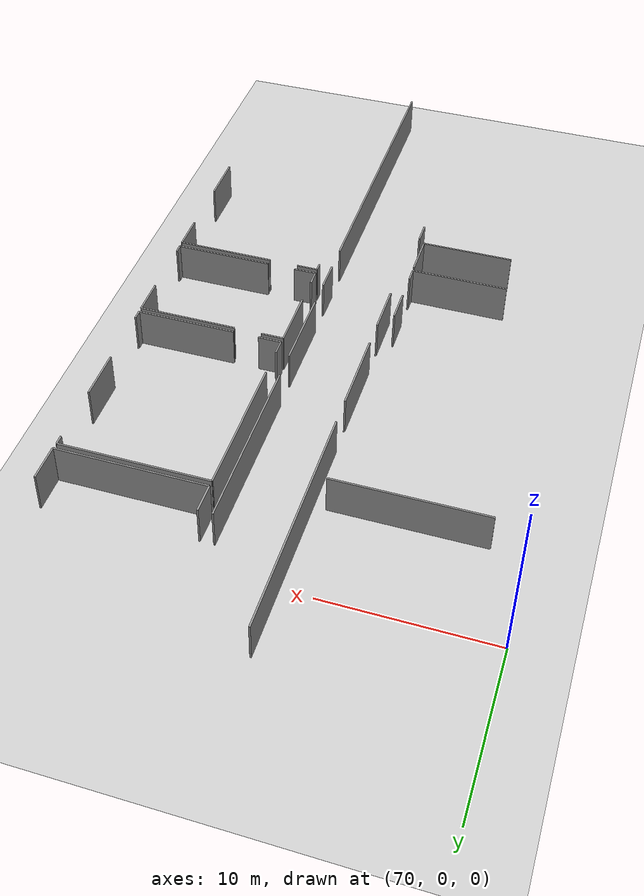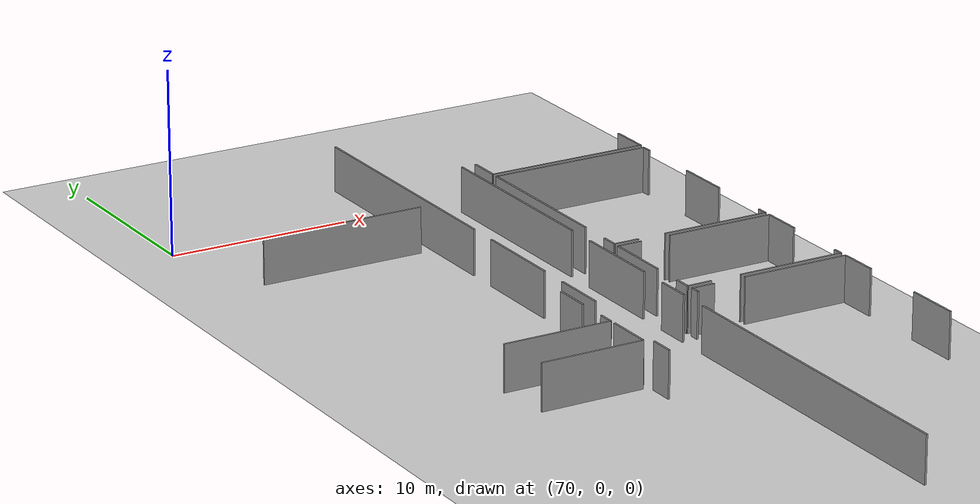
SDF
<sdf version="1.6">
 <world name="default">
  <model name="ground_plane">
   <static>1</static>
   <link name="link">
    <collision name="collision">
     <geometry><plane><normal>0 0 1</normal><size>100 100</size></plane></geometry>
     <surface><friction><ode><mu>100</mu><mu2>50</mu2></ode></friction></surface>
    </collision>
    <visual name="visual">
     <cast_shadows>0</cast_shadows>
     <geometry><plane><normal>0 0 1</normal><size>100 100</size></plane></geometry>
     <material>
      <script><uri>file://media/materials/scripts/gazebo.material</uri><name>Gazebo/Grey</name></script>
     </material>
    </visual>
   </link>
  </model>
  <model name="0510035740_A_40_1_103">
   <static>1</static>
   <link name="Wall_514">
    <collision name="Wall_514_Collision">
     <geometry><box><size>3.12075277755 0.1 2.5</size></box></geometry>
     <pose>1.56037638877 0 1.25 0 0 0</pose>
    </collision>
    <visual name="Wall_514_Visual">
     <pose>1.56037638877 0 1.25 0 0 0</pose>
     <geometry><box><size>3.12075277755 0.1 2.5</size></box></geometry>
     <material>
      <script><uri>file://media/materials/scripts/gazebo.material</uri><name>Gazebo/Grey</name></script>
      <ambient>1 1 1 1</ambient>
     </material>
    </visual>
    <pose>175.821272438 -71.553714079 0 0 0 1.57079632679</pose>
   </link>
   <link name="Wall_515">
    <collision name="Wall_515_Collision">
     <geometry><box><size>5.16741432587 0.1 2.5</size></box></geometry>
     <pose>2.58370716293 0 1.25 0 0 0</pose>
    </collision>
    <visual name="Wall_515_Visual">
     <pose>2.58370716293 0 1.25 0 0 0</pose>
     <geometry><box><size>5.16741432587 0.1 2.5</size></box></geometry>
     <material>
      <script><uri>file://media/materials/scripts/gazebo.material</uri><name>Gazebo/Grey</name></script>
      <ambient>1 1 1 1</ambient>
     </material>
    </visual>
    <pose>175.821272438 -66.7563434706 0 0 0 1.57079632679</pose>
   </link>
   <link name="Wall_516">
    <collision name="Wall_516_Collision">
     <geometry><box><size>14.5763722772 0.1 2.5</size></box></geometry>
     <pose>7.28818613859 0 1.25 0 0 0</pose>
    </collision>
    <visual name="Wall_516_Visual">
     <pose>7.28818613859 0 1.25 0 0 0</pose>
     <geometry><box><size>14.5763722772 0.1 2.5</size></box></geometry>
     <material>
      <script><uri>file://media/materials/scripts/gazebo.material</uri><name>Gazebo/Grey</name></script>
      <ambient>1 1 1 1</ambient>
     </material>
    </visual>
    <pose>175.821272438 -59.8633274747 0 0 0 1.57079632679</pose>
   </link>
   <link name="Wall_520">
    <collision name="Wall_520_Collision">
     <geometry><box><size>11.078976923 0.1 2.5</size></box></geometry>
     <pose>5.53948846151 0 1.25 0 0 0</pose>
    </collision>
    <visual name="Wall_520_Visual">
     <pose>5.53948846151 0 1.25 0 0 0</pose>
     <geometry><box><size>11.078976923 0.1 2.5</size></box></geometry>
     <material>
      <script><uri>file://media/materials/scripts/gazebo.material</uri><name>Gazebo/Grey</name></script>
      <ambient>1 1 1 1</ambient>
     </material>
    </visual>
    <pose>179.985660171 -51.4358229222 0 0 0 -1.57079632679</pose>
   </link>
   <link name="Wall_521">
    <collision name="Wall_521_Collision">
     <geometry><box><size>5.12680596182 0.1 2.5</size></box></geometry>
     <pose>2.56340298091 0 1.25 0 0 0</pose>
    </collision>
    <visual name="Wall_521_Visual">
     <pose>2.56340298091 0 1.25 0 0 0</pose>
     <geometry><box><size>5.12680596182 0.1 2.5</size></box></geometry>
     <material>
      <script><uri>file://media/materials/scripts/gazebo.material</uri><name>Gazebo/Grey</name></script>
      <ambient>1 1 1 1</ambient>
     </material>
    </visual>
    <pose>179.985660171 -64.2063920103 0 0 0 -1.57079632679</pose>
   </link>
   <link name="Wall_522">
    <collision name="Wall_522_Collision">
     <geometry><box><size>1.93016630394 0.1 2.5</size></box></geometry>
     <pose>0.96508315197 0 1.25 0 0 0</pose>
    </collision>
    <visual name="Wall_522_Visual">
     <pose>0.96508315197 0 1.25 0 0 0</pose>
     <geometry><box><size>1.93016630394 0.1 2.5</size></box></geometry>
     <material>
      <script><uri>file://media/materials/scripts/gazebo.material</uri><name>Gazebo/Grey</name></script>
      <ambient>1 1 1 1</ambient>
     </material>
    </visual>
    <pose>179.985660171 -71.0209831031 0 0 0 -1.57079632679</pose>
   </link>
   <link name="Wall_523">
    <collision name="Wall_523_Collision">
     <geometry><box><size>18.7085271219 0.1 2.5</size></box></geometry>
     <pose>9.35426356097 0 1.25 0 0 0</pose>
    </collision>
    <visual name="Wall_523_Visual">
     <pose>9.35426356097 0 1.25 0 0 0</pose>
     <geometry><box><size>18.7085271219 0.1 2.5</size></box></geometry>
     <material>
      <script><uri>file://media/materials/scripts/gazebo.material</uri><name>Gazebo/Grey</name></script>
      <ambient>1 1 1 1</ambient>
     </material>
    </visual>
    <pose>179.985660171 -74.6521322564 0 0 0 -1.57079632679</pose>
   </link>
   <link name="Wall_539">
    <collision name="Wall_539_Collision">
     <geometry><box><size>9.06939738644 0.1 2.5</size></box></geometry>
     <pose>4.53469869322 0 1.25 0 0 0</pose>
    </collision>
    <visual name="Wall_539_Visual">
     <pose>4.53469869322 0 1.25 0 0 0</pose>
     <geometry><box><size>9.06939738644 0.1 2.5</size></box></geometry>
     <material>
      <script><uri>file://media/materials/scripts/gazebo.material</uri><name>Gazebo/Grey</name></script>
      <ambient>1 1 1 1</ambient>
     </material>
    </visual>
    <pose>175.102250592 -55.650971111 0 0 0 -3.13915800233</pose>
   </link>
   <link name="Wall_555">
    <collision name="Wall_555_Collision">
     <geometry><box><size>2.03397143455 0.1 2.5</size></box></geometry>
     <pose>1.01698571728 0 1.25 0 0 0</pose>
    </collision>
    <visual name="Wall_555_Visual">
     <pose>1.01698571728 0 1.25 0 0 0</pose>
     <geometry><box><size>2.03397143455 0.1 2.5</size></box></geometry>
     <material>
      <script><uri>file://media/materials/scripts/gazebo.material</uri><name>Gazebo/Grey</name></script>
      <ambient>1 1 1 1</ambient>
     </material>
    </visual>
    <pose>175.07306333 -69.5555287653 0 0 0 -1.57079632679</pose>
   </link>
   <link name="Wall_556">
    <collision name="Wall_556_Collision">
     <geometry><box><size>0.867749979379 0.1 2.5</size></box></geometry>
     <pose>0.433874989689 0 1.25 0 0 0</pose>
    </collision>
    <visual name="Wall_556_Visual">
     <pose>0.433874989689 0 1.25 0 0 0</pose>
     <geometry><box><size>0.867749979379 0.1 2.5</size></box></geometry>
     <material>
      <script><uri>file://media/materials/scripts/gazebo.material</uri><name>Gazebo/Grey</name></script>
      <ambient>1 1 1 1</ambient>
     </material>
    </visual>
    <pose>175.07306333 -73.2724630876 0 0 0 -1.57079632679</pose>
   </link>
   <link name="Wall_557">
    <collision name="Wall_557_Collision">
     <geometry><box><size>5.94455689295 0.1 2.5</size></box></geometry>
     <pose>2.97227844648 0 1.25 0 0 0</pose>
    </collision>
    <visual name="Wall_557_Visual">
     <pose>2.97227844648 0 1.25 0 0 0</pose>
     <geometry><box><size>5.94455689295 0.1 2.5</size></box></geometry>
     <material>
      <script><uri>file://media/materials/scripts/gazebo.material</uri><name>Gazebo/Grey</name></script>
      <ambient>1 1 1 1</ambient>
     </material>
    </visual>
    <pose>175.07306333 -74.140213067 0 0 0 3.14159265359</pose>
   </link>
   <link name="Wall_564">
    <collision name="Wall_564_Collision">
     <geometry><box><size>2.58751419706 0.1 2.5</size></box></geometry>
     <pose>1.29375709853 0 1.25 0 0 0</pose>
    </collision>
    <visual name="Wall_564_Visual">
     <pose>1.29375709853 0 1.25 0 0 0</pose>
     <geometry><box><size>2.58751419706 0.1 2.5</size></box></geometry>
     <material>
      <script><uri>file://media/materials/scripts/gazebo.material</uri><name>Gazebo/Grey</name></script>
      <ambient>1 1 1 1</ambient>
     </material>
    </visual>
    <pose>175.087783862 -74.4653337817 0 0 0 -1.57079632679</pose>
   </link>
   <link name="Wall_565">
    <collision name="Wall_565_Collision">
     <geometry><box><size>5.64695231823 0.1 2.5</size></box></geometry>
     <pose>2.82347615911 0 1.25 0 0 0</pose>
    </collision>
    <visual name="Wall_565_Visual">
     <pose>2.82347615911 0 1.25 0 0 0</pose>
     <geometry><box><size>5.64695231823 0.1 2.5</size></box></geometry>
     <material>
      <script><uri>file://media/materials/scripts/gazebo.material</uri><name>Gazebo/Grey</name></script>
      <ambient>1 1 1 1</ambient>
     </material>
    </visual>
    <pose>175.087783862 -77.0528479788 0 0 0 -3.13548009544</pose>
   </link>
   <link name="Wall_572">
    <collision name="Wall_572_Collision">
     <geometry><box><size>1.36697905497 0.1 2.5</size></box></geometry>
     <pose>0.683489527484 0 1.25 0 0 0</pose>
    </collision>
    <visual name="Wall_572_Visual">
     <pose>0.683489527484 0 1.25 0 0 0</pose>
     <geometry><box><size>1.36697905497 0.1 2.5</size></box></geometry>
     <material>
      <script><uri>file://media/materials/scripts/gazebo.material</uri><name>Gazebo/Grey</name></script>
      <ambient>1 1 1 1</ambient>
     </material>
    </visual>
    <pose>175.470010089 -77.4112167916 0 0 0 -1.57079632679</pose>
   </link>
   <link name="Wall_612">
    <collision name="Wall_612_Collision">
     <geometry><box><size>0.556588389815 0.1 2.5</size></box></geometry>
     <pose>0.278294194907 0 1.25 0 0 0</pose>
    </collision>
    <visual name="Wall_612_Visual">
     <pose>0.278294194907 0 1.25 0 0 0</pose>
     <geometry><box><size>0.556588389815 0.1 2.5</size></box></geometry>
     <material>
      <script><uri>file://media/materials/scripts/gazebo.material</uri><name>Gazebo/Grey</name></script>
      <ambient>1 1 1 1</ambient>
     </material>
    </visual>
    <pose>180.810009962 -72.9605400912 0 0 0 1.57079632679</pose>
   </link>
   <link name="Wall_613">
    <collision name="Wall_613_Collision">
     <geometry><box><size>1.28677753596 0.1 2.5</size></box></geometry>
     <pose>0.64338876798 0 1.25 0 0 0</pose>
    </collision>
    <visual name="Wall_613_Visual">
     <pose>0.64338876798 0 1.25 0 0 0</pose>
     <geometry><box><size>1.28677753596 0.1 2.5</size></box></geometry>
     <material>
      <script><uri>file://media/materials/scripts/gazebo.material</uri><name>Gazebo/Grey</name></script>
      <ambient>1 1 1 1</ambient>
     </material>
    </visual>
    <pose>180.810009962 -72.4039517014 0 0 0 0.0</pose>
   </link>
   <link name="Wall_614">
    <collision name="Wall_614_Collision">
     <geometry><box><size>5.96486107498 0.1 2.5</size></box></geometry>
     <pose>2.98243053749 0 1.25 0 0 0</pose>
    </collision>
    <visual name="Wall_614_Visual">
     <pose>2.98243053749 0 1.25 0 0 0</pose>
     <geometry><box><size>5.96486107498 0.1 2.5</size></box></geometry>
     <material>
      <script><uri>file://media/materials/scripts/gazebo.material</uri><name>Gazebo/Grey</name></script>
      <ambient>1 1 1 1</ambient>
     </material>
    </visual>
    <pose>183.88507833 -72.4039517014 0 0 0 0.0</pose>
   </link>
   <link name="Wall_615">
    <collision name="Wall_615_Collision">
     <geometry><box><size>2.22609975698 0.1 2.5</size></box></geometry>
     <pose>1.11304987849 0 1.25 0 0 0</pose>
    </collision>
    <visual name="Wall_615_Visual">
     <pose>1.11304987849 0 1.25 0 0 0</pose>
     <geometry><box><size>2.22609975698 0.1 2.5</size></box></geometry>
     <material>
      <script><uri>file://media/materials/scripts/gazebo.material</uri><name>Gazebo/Grey</name></script>
      <ambient>1 1 1 1</ambient>
     </material>
    </visual>
    <pose>189.849939405 -72.4039517014 0 0 0 -1.57079632679</pose>
   </link>
   <link name="Wall_616">
    <collision name="Wall_616_Collision">
     <geometry><box><size>3.07075372931 0.1 2.5</size></box></geometry>
     <pose>1.53537686465 0 1.25 0 0 0</pose>
    </collision>
    <visual name="Wall_616_Visual">
     <pose>1.53537686465 0 1.25 0 0 0</pose>
     <geometry><box><size>3.07075372931 0.1 2.5</size></box></geometry>
     <material>
      <script><uri>file://media/materials/scripts/gazebo.material</uri><name>Gazebo/Grey</name></script>
      <ambient>1 1 1 1</ambient>
     </material>
    </visual>
    <pose>189.849939405 -78.2954639188 0 0 0 -1.57079632679</pose>
   </link>
   <link name="Wall_620">
    <collision name="Wall_620_Collision">
     <geometry><box><size>0.984245223758 0.1 2.5</size></box></geometry>
     <pose>0.492122611879 0 1.25 0 0 0</pose>
    </collision>
    <visual name="Wall_620_Visual">
     <pose>0.492122611879 0 1.25 0 0 0</pose>
     <geometry><box><size>0.984245223758 0.1 2.5</size></box></geometry>
     <material>
      <script><uri>file://media/materials/scripts/gazebo.material</uri><name>Gazebo/Grey</name></script>
      <ambient>1 1 1 1</ambient>
     </material>
    </visual>
    <pose>180.784883536 -72.0399992386 0 0 0 1.57079632679</pose>
   </link>
   <link name="Wall_621">
    <collision name="Wall_621_Collision">
     <geometry><box><size>3.7222641701 0.1 2.5</size></box></geometry>
     <pose>1.86113208505 0 1.25 0 0 0</pose>
    </collision>
    <visual name="Wall_621_Visual">
     <pose>1.86113208505 0 1.25 0 0 0</pose>
     <geometry><box><size>3.7222641701 0.1 2.5</size></box></geometry>
     <material>
      <script><uri>file://media/materials/scripts/gazebo.material</uri><name>Gazebo/Grey</name></script>
      <ambient>1 1 1 1</ambient>
     </material>
    </visual>
    <pose>180.784883536 -69.30172649 0 0 0 1.57079632679</pose>
   </link>
   <link name="Wall_622">
    <collision name="Wall_622_Collision">
     <geometry><box><size>1.37535453005 0.1 2.5</size></box></geometry>
     <pose>0.687677265027 0 1.25 0 0 0</pose>
    </collision>
    <visual name="Wall_622_Visual">
     <pose>0.687677265027 0 1.25 0 0 0</pose>
     <geometry><box><size>1.37535453005 0.1 2.5</size></box></geometry>
     <material>
      <script><uri>file://media/materials/scripts/gazebo.material</uri><name>Gazebo/Grey</name></script>
      <ambient>1 1 1 1</ambient>
     </material>
    </visual>
    <pose>180.784883536 -65.5794623199 0 0 0 0.0</pose>
   </link>
   <link name="Wall_623">
    <collision name="Wall_623_Collision">
     <geometry><box><size>5.99303312754 0.1 2.5</size></box></geometry>
     <pose>2.99651656377 0 1.25 0 0 0</pose>
    </collision>
    <visual name="Wall_623_Visual">
     <pose>2.99651656377 0 1.25 0 0 0</pose>
     <geometry><box><size>5.99303312754 0.1 2.5</size></box></geometry>
     <material>
      <script><uri>file://media/materials/scripts/gazebo.material</uri><name>Gazebo/Grey</name></script>
      <ambient>1 1 1 1</ambient>
     </material>
    </visual>
    <pose>183.837871107 -65.5794623199 0 0 0 0.0</pose>
   </link>
   <link name="Wall_624">
    <collision name="Wall_624_Collision">
     <geometry><box><size>2.25274899589 0.1 2.5</size></box></geometry>
     <pose>1.12637449795 0 1.25 0 0 0</pose>
    </collision>
    <visual name="Wall_624_Visual">
     <pose>1.12637449795 0 1.25 0 0 0</pose>
     <geometry><box><size>2.25274899589 0.1 2.5</size></box></geometry>
     <material>
      <script><uri>file://media/materials/scripts/gazebo.material</uri><name>Gazebo/Grey</name></script>
      <ambient>1 1 1 1</ambient>
     </material>
    </visual>
    <pose>189.830904234 -65.5794623199 0 0 0 -1.57079632679</pose>
   </link>
   <link name="Wall_625">
    <collision name="Wall_625_Collision">
     <geometry><box><size>0.53780702144 0.1 2.5</size></box></geometry>
     <pose>0.26890351072 0 1.25 0 0 0</pose>
    </collision>
    <visual name="Wall_625_Visual">
     <pose>0.26890351072 0 1.25 0 0 0</pose>
     <geometry><box><size>0.53780702144 0.1 2.5</size></box></geometry>
     <material>
      <script><uri>file://media/materials/scripts/gazebo.material</uri><name>Gazebo/Grey</name></script>
      <ambient>1 1 1 1</ambient>
     </material>
    </visual>
    <pose>189.830904234 -71.4798576169 0 0 0 -1.57079632679</pose>
   </link>
   <link name="Wall_626">
    <collision name="Wall_626_Collision">
     <geometry><box><size>5.94963293846 0.1 2.5</size></box></geometry>
     <pose>2.97481646923 0 1.25 0 0 0</pose>
    </collision>
    <visual name="Wall_626_Visual">
     <pose>2.97481646923 0 1.25 0 0 0</pose>
     <geometry><box><size>5.94963293846 0.1 2.5</size></box></geometry>
     <material>
      <script><uri>file://media/materials/scripts/gazebo.material</uri><name>Gazebo/Grey</name></script>
      <ambient>1 1 1 1</ambient>
     </material>
    </visual>
    <pose>189.830904234 -72.0176646384 0 0 0 3.14159265359</pose>
   </link>
   <link name="Wall_627">
    <collision name="Wall_627_Collision">
     <geometry><box><size>1.37401325298 0.1 2.5</size></box></geometry>
     <pose>0.687006626489 0 1.25 0 0 0</pose>
    </collision>
    <visual name="Wall_627_Visual">
     <pose>0.687006626489 0 1.25 0 0 0</pose>
     <geometry><box><size>1.37401325298 0.1 2.5</size></box></geometry>
     <material>
      <script><uri>file://media/materials/scripts/gazebo.material</uri><name>Gazebo/Grey</name></script>
      <ambient>1 1 1 1</ambient>
     </material>
    </visual>
    <pose>182.158715253 -72.0176646384 0 0 0 -3.1253369269</pose>
   </link>
   <link name="Wall_628">
    <collision name="Wall_628_Collision">
     <geometry><box><size>0.972316516818 0.1 2.5</size></box></geometry>
     <pose>0.486158258409 0 1.25 0 0 0</pose>
    </collision>
    <visual name="Wall_628_Visual">
     <pose>0.486158258409 0 1.25 0 0 0</pose>
     <geometry><box><size>0.972316516818 0.1 2.5</size></box></geometry>
     <material>
      <script><uri>file://media/materials/scripts/gazebo.material</uri><name>Gazebo/Grey</name></script>
      <ambient>1 1 1 1</ambient>
     </material>
    </visual>
    <pose>180.804933916 -65.2312455981 0 0 0 1.57079632679</pose>
   </link>
   <link name="Wall_629">
    <collision name="Wall_629_Collision">
     <geometry><box><size>8.87749598675 0.1 2.5</size></box></geometry>
     <pose>4.43874799338 0 1.25 0 0 0</pose>
    </collision>
    <visual name="Wall_629_Visual">
     <pose>4.43874799338 0 1.25 0 0 0</pose>
     <geometry><box><size>8.87749598675 0.1 2.5</size></box></geometry>
     <material>
      <script><uri>file://media/materials/scripts/gazebo.material</uri><name>Gazebo/Grey</name></script>
      <ambient>1 1 1 1</ambient>
     </material>
    </visual>
    <pose>180.804933916 -62.4706382493 0 0 0 1.57079632679</pose>
   </link>
   <link name="Wall_630">
    <collision name="Wall_630_Collision">
     <geometry><box><size>9.01150358813 0.1 2.5</size></box></geometry>
     <pose>4.50575179406 0 1.25 0 0 0</pose>
    </collision>
    <visual name="Wall_630_Visual">
     <pose>4.50575179406 0 1.25 0 0 0</pose>
     <geometry><box><size>9.01150358813 0.1 2.5</size></box></geometry>
     <material>
      <script><uri>file://media/materials/scripts/gazebo.material</uri><name>Gazebo/Grey</name></script>
      <ambient>1 1 1 1</ambient>
     </material>
    </visual>
    <pose>180.804933916 -53.5931422625 0 0 0 0.0</pose>
   </link>
   <link name="Wall_631">
    <collision name="Wall_631_Collision">
     <geometry><box><size>0.565979074002 0.1 2.5</size></box></geometry>
     <pose>0.282989537001 0 1.25 0 0 0</pose>
    </collision>
    <visual name="Wall_631_Visual">
     <pose>0.282989537001 0 1.25 0 0 0</pose>
     <geometry><box><size>0.565979074002 0.1 2.5</size></box></geometry>
     <material>
      <script><uri>file://media/materials/scripts/gazebo.material</uri><name>Gazebo/Grey</name></script>
      <ambient>1 1 1 1</ambient>
     </material>
    </visual>
    <pose>189.816437504 -53.5931422625 0 0 0 -1.57079632679</pose>
   </link>
   <link name="Wall_632">
    <collision name="Wall_632_Collision">
     <geometry><box><size>3.1253212185 0.1 2.5</size></box></geometry>
     <pose>1.56266060925 0 1.25 0 0 0</pose>
    </collision>
    <visual name="Wall_632_Visual">
     <pose>1.56266060925 0 1.25 0 0 0</pose>
     <geometry><box><size>3.1253212185 0.1 2.5</size></box></geometry>
     <material>
      <script><uri>file://media/materials/scripts/gazebo.material</uri><name>Gazebo/Grey</name></script>
      <ambient>1 1 1 1</ambient>
     </material>
    </visual>
    <pose>189.816437504 -57.8105746718 0 0 0 -1.57079632679</pose>
   </link>
   <link name="Wall_633">
    <collision name="Wall_633_Collision">
     <geometry><box><size>0.595166335666 0.1 2.5</size></box></geometry>
     <pose>0.297583167833 0 1.25 0 0 0</pose>
    </collision>
    <visual name="Wall_633_Visual">
     <pose>0.297583167833 0 1.25 0 0 0</pose>
     <geometry><box><size>0.595166335666 0.1 2.5</size></box></geometry>
     <material>
      <script><uri>file://media/materials/scripts/gazebo.material</uri><name>Gazebo/Grey</name></script>
      <ambient>1 1 1 1</ambient>
     </material>
    </visual>
    <pose>189.816437504 -64.6360792625 0 0 0 -1.57079632679</pose>
   </link>
   <link name="Wall_634">
    <collision name="Wall_634_Collision">
     <geometry><box><size>6.0366871189 0.1 2.5</size></box></geometry>
     <pose>3.01834355945 0 1.25 0 0 0</pose>
    </collision>
    <visual name="Wall_634_Visual">
     <pose>3.01834355945 0 1.25 0 0 0</pose>
     <geometry><box><size>6.0366871189 0.1 2.5</size></box></geometry>
     <material>
      <script><uri>file://media/materials/scripts/gazebo.material</uri><name>Gazebo/Grey</name></script>
      <ambient>1 1 1 1</ambient>
     </material>
    </visual>
    <pose>189.816437504 -65.2312455981 0 0 0 3.14159265359</pose>
   </link>
   <link name="Wall_635">
    <collision name="Wall_635_Collision">
     <geometry><box><size>1.40707981447 0.1 2.5</size></box></geometry>
     <pose>0.703539907235 0 1.25 0 0 0</pose>
    </collision>
    <visual name="Wall_635_Visual">
     <pose>0.703539907235 0 1.25 0 0 0</pose>
     <geometry><box><size>1.40707981447 0.1 2.5</size></box></geometry>
     <material>
      <script><uri>file://media/materials/scripts/gazebo.material</uri><name>Gazebo/Grey</name></script>
      <ambient>1 1 1 1</ambient>
     </material>
    </visual>
    <pose>182.212013731 -65.2312455981 0 0 0 3.14159265359</pose>
   </link>
   <link name="Wall_636">
    <collision name="Wall_636_Collision">
     <geometry><box><size>1.7875294252 0.1 2.5</size></box></geometry>
     <pose>0.893764712601 0 1.25 0 0 0</pose>
    </collision>
    <visual name="Wall_636_Visual">
     <pose>0.893764712601 0 1.25 0 0 0</pose>
     <geometry><box><size>1.7875294252 0.1 2.5</size></box></geometry>
     <material>
      <script><uri>file://media/materials/scripts/gazebo.material</uri><name>Gazebo/Grey</name></script>
      <ambient>1 1 1 1</ambient>
     </material>
    </visual>
    <pose>180.819654448 -53.2233523474 0 0 0 1.57079632679</pose>
   </link>
   <link name="Wall_642">
    <collision name="Wall_642_Collision">
     <geometry><box><size>2.23472903435 0.1 2.5</size></box></geometry>
     <pose>1.11736451717 0 1.25 0 0 0</pose>
    </collision>
    <visual name="Wall_642_Visual">
     <pose>1.11736451717 0 1.25 0 0 0</pose>
     <geometry><box><size>2.23472903435 0.1 2.5</size></box></geometry>
     <material>
      <script><uri>file://media/materials/scripts/gazebo.material</uri><name>Gazebo/Grey</name></script>
      <ambient>1 1 1 1</ambient>
     </material>
    </visual>
    <pose>189.860091496 -50.9810092447 0 0 0 -1.57079632679</pose>
   </link>
   <link name="Wall_643">
    <collision name="Wall_643_Collision">
     <geometry><box><size>9.04044025389 0.1 2.5</size></box></geometry>
     <pose>4.52022012695 0 1.25 0 0 0</pose>
    </collision>
    <visual name="Wall_643_Visual">
     <pose>4.52022012695 0 1.25 0 0 0</pose>
     <geometry><box><size>9.04044025389 0.1 2.5</size></box></geometry>
     <material>
      <script><uri>file://media/materials/scripts/gazebo.material</uri><name>Gazebo/Grey</name></script>
      <ambient>1 1 1 1</ambient>
     </material>
    </visual>
    <pose>189.860091496 -53.2157382791 0 0 0 -3.14075043032</pose>
   </link>
   <pose>-93.95 49.6557238758 0 0 0 0</pose>
  </model>
 </world>
</sdf>
